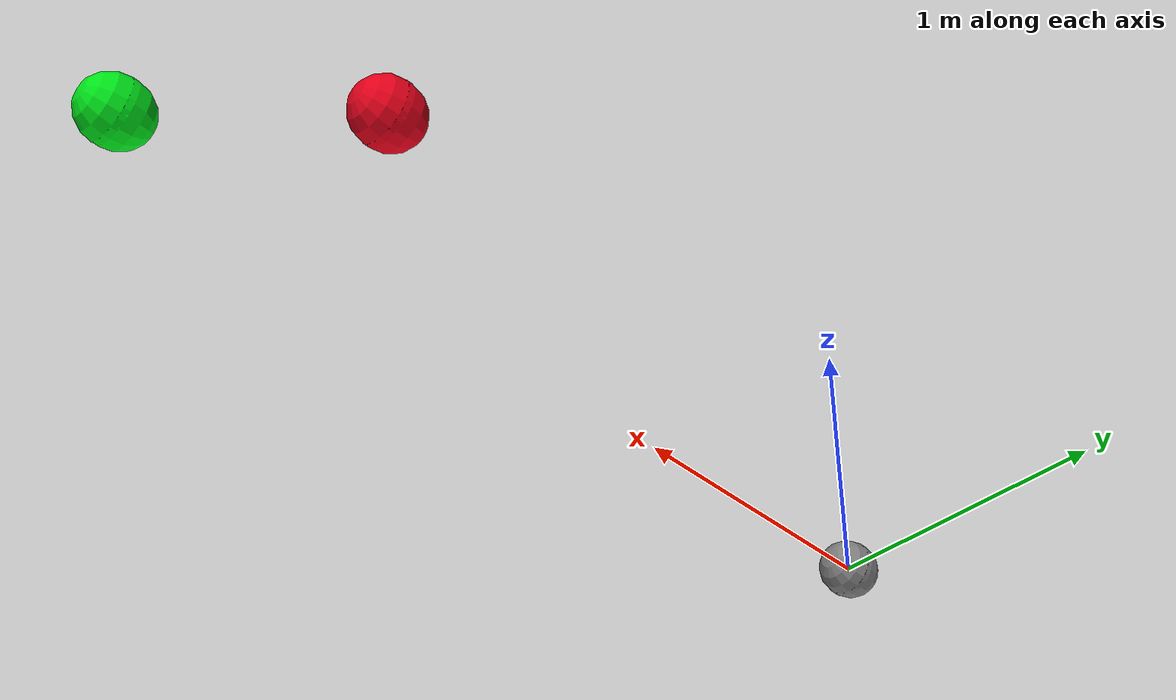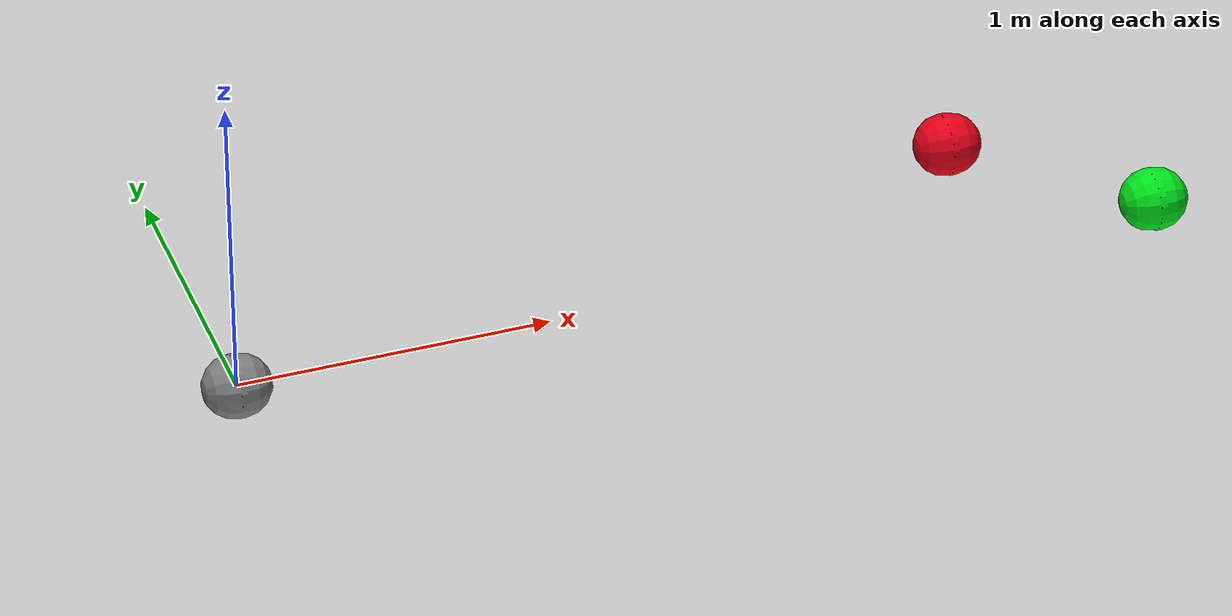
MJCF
<mujoco model="obstacle_course">
    <!-- A 2D particle must first navigate toward the continous goal state, but
    then deviate towards the disconinuos goal region. -->

    <compiler inertiafromgeom="true" angle="radian" coordinate="local" />
    <option timestep="0.01" gravity="0 0 0" iterations="20" integrator="Euler" />
    <default>
        <joint limited="false" damping="1" />
        <geom contype="2" conaffinity="1" condim="1" friction=".5 .1 .1" density="1000" margin="0.002" />
    </default>

    <worldbody>
        <body name="particle" pos="0 0 0">
            <geom name="particle_geom" type="capsule" fromto="-0.01 0 0 0.01 0 0" size="0.1" />
            <site name="particle_site" pos="0 0 0" size="0.01" />
            <joint name="ball_x" type="slide" pos="0 0 0" axis="1 0 0" />
            <joint name="ball_y" type="slide" pos="0 0 0" axis="0 1 0" />
        </body>

        <body name="disc_target" pos="2.5 0.5 0">
            <geom name="disc_target_geom" type="capsule" fromto="-0.01 0 0 0.01 0 0" size="0.1" rgba="0.9 0 0.1 1"/>
        </body>

        <body name="target" pos="3.0 0 0">
            <geom name="target_geom" type="capsule" fromto="-0.01 0 0 0.01 0 0" size="0.1" rgba="0 0.9 0.1 1"/>
        </body>

    </worldbody>

    <actuator>
        <motor joint="ball_x" ctrlrange="-1.0 1.0" ctrllimited="true"/>
        <motor joint="ball_y" ctrlrange="-1.0 1.0" ctrllimited="true"/>
    </actuator>
</mujoco>
